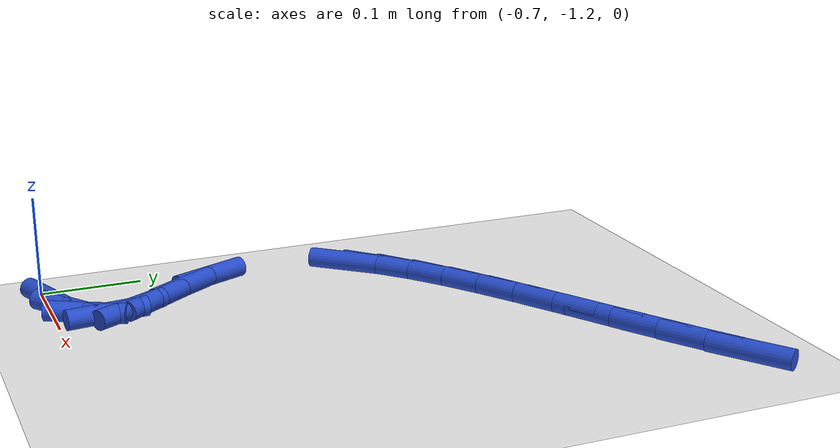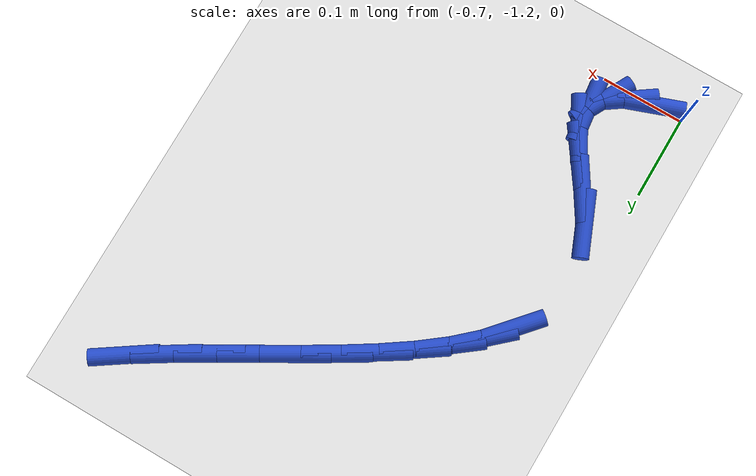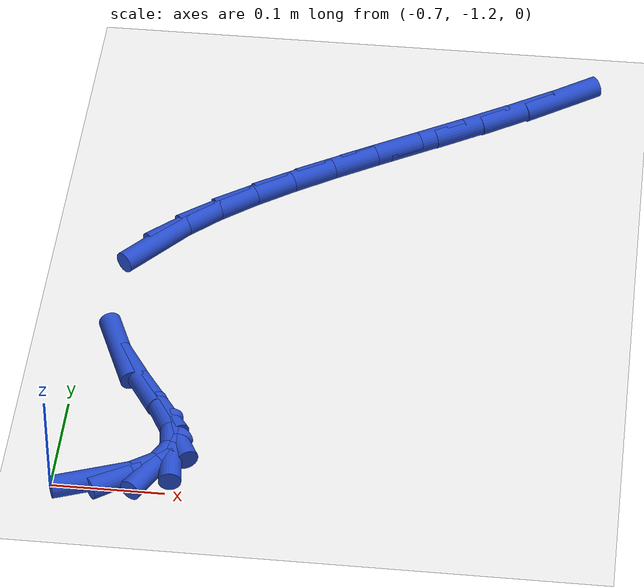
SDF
<sdf version="1.6">
 <world name="default">
  <model name="ground_plane">
   <static>1</static>
   <link name="link">
    <collision name="collision">
     <geometry><plane><normal>0 0 1</normal><size>100 100</size></plane></geometry>
     <surface><friction><ode><mu>100</mu><mu2>50</mu2></ode></friction></surface>
    </collision>
    <visual name="visual">
     <cast_shadows>0</cast_shadows>
     <geometry><plane><normal>0 0 1</normal><size>100 100</size></plane></geometry>
     <material>
      <script><uri>file://media/materials/scripts/gazebo.material</uri><name>Gazebo/WhiteGlow</name></script>
     </material>
    </visual>
   </link>
  </model>
  <model name="line">
   <link name="link_179">
    <pose>-0.6598824983831714 -1.1976900644804924 0.01 0 1.57 0.3508235294581301</pose>
    <collision name="collision">
     <geometry><cylinder><radius>0.01</radius><length>0.08</length></cylinder></geometry>
    </collision>
    <visual name="visual">
     <material>
      <script><name>Gazebo/Blue</name><uri>file://media/materials/scripts/gazebo.material</uri></script>
     </material>
     <geometry><cylinder><radius>0.01</radius><length>0.08</length></cylinder></geometry>
    </visual>
   </link>
   <link name="link_180">
    <pose>-0.6305008990826416 -1.1869375145508445 0.01 0 1.57 0.6054956786613084</pose>
    <collision name="collision">
     <geometry><cylinder><radius>0.01</radius><length>0.08</length></cylinder></geometry>
    </collision>
    <visual name="visual">
     <material>
      <script><name>Gazebo/Blue</name><uri>file://media/materials/scripts/gazebo.material</uri></script>
     </material>
     <geometry><cylinder><radius>0.01</radius><length>0.08</length></cylinder></geometry>
    </visual>
   </link>
   <link name="link_181">
    <pose>-0.610210162742367 -1.1728915519763219 0.01 0 1.57 1.0847719426976241</pose>
    <collision name="collision">
     <geometry><cylinder><radius>0.01</radius><length>0.08</length></cylinder></geometry>
    </collision>
    <visual name="visual">
     <material>
      <script><name>Gazebo/Blue</name><uri>file://media/materials/scripts/gazebo.material</uri></script>
     </material>
     <geometry><cylinder><radius>0.01</radius><length>0.08</length></cylinder></geometry>
    </visual>
   </link>
   <link name="link_182">
    <pose>-0.6005984969816252 -1.15469770941832 0.01 0 1.57 -1.456807750710764</pose>
    <collision name="collision">
     <geometry><cylinder><radius>0.01</radius><length>0.08</length></cylinder></geometry>
    </collision>
    <visual name="visual">
     <material>
      <script><name>Gazebo/Blue</name><uri>file://media/materials/scripts/gazebo.material</uri></script>
     </material>
     <geometry><cylinder><radius>0.01</radius><length>0.08</length></cylinder></geometry>
    </visual>
   </link>
   <link name="link_183">
    <pose>-0.6032541094196948 -1.131501519538237 0.01 0 1.57 -1.0759746072960739</pose>
    <collision name="collision">
     <geometry><cylinder><radius>0.01</radius><length>0.08</length></cylinder></geometry>
    </collision>
    <visual name="visual">
     <material>
      <script><name>Gazebo/Blue</name><uri>file://media/materials/scripts/gazebo.material</uri></script>
     </material>
     <geometry><cylinder><radius>0.01</radius><length>0.08</length></cylinder></geometry>
    </visual>
   </link>
   <link name="link_184">
    <pose>-0.6187268936114837 -1.1028268516559616 0.01 0 1.57 -0.9632029012774259</pose>
    <collision name="collision">
     <geometry><cylinder><radius>0.01</radius><length>0.08</length></cylinder></geometry>
    </collision>
    <visual name="visual">
     <material>
      <script><name>Gazebo/Blue</name><uri>file://media/materials/scripts/gazebo.material</uri></script>
     </material>
     <geometry><cylinder><radius>0.01</radius><length>0.08</length></cylinder></geometry>
    </visual>
   </link>
   <link name="link_185">
    <pose>-0.641190613293515 -1.0705208833584952 0.01 0 1.57 -1.002423085715838</pose>
    <collision name="collision">
     <geometry><cylinder><radius>0.01</radius><length>0.08</length></cylinder></geometry>
    </collision>
    <visual name="visual">
     <material>
      <script><name>Gazebo/Blue</name><uri>file://media/materials/scripts/gazebo.material</uri></script>
     </material>
     <geometry><cylinder><radius>0.01</radius><length>0.08</length></cylinder></geometry>
    </visual>
   </link>
   <link name="link_186">
    <pose>-0.6624002321439293 -1.0373121451618768 0.01 0 1.57 -1.1760225902428454</pose>
    <collision name="collision">
     <geometry><cylinder><radius>0.01</radius><length>0.08</length></cylinder></geometry>
    </collision>
    <visual name="visual">
     <material>
      <script><name>Gazebo/Blue</name><uri>file://media/materials/scripts/gazebo.material</uri></script>
     </material>
     <geometry><cylinder><radius>0.01</radius><length>0.08</length></cylinder></geometry>
    </visual>
   </link>
   <link name="link_191">
    <pose>-0.6501375088764044 -0.8920895694487568 0.01 0 1.57 0.8528889374319815</pose>
    <collision name="collision">
     <geometry><cylinder><radius>0.01</radius><length>0.08</length></cylinder></geometry>
    </collision>
    <visual name="visual">
     <material>
      <script><name>Gazebo/Blue</name><uri>file://media/materials/scripts/gazebo.material</uri></script>
     </material>
     <geometry><cylinder><radius>0.01</radius><length>0.08</length></cylinder></geometry>
    </visual>
   </link>
   <link name="link_192">
    <pose>-0.6277399724215161 -0.8664446804468154 0.01 0 1.57 0.7391953261253336</pose>
    <collision name="collision">
     <geometry><cylinder><radius>0.01</radius><length>0.08</length></cylinder></geometry>
    </collision>
    <visual name="visual">
     <material>
      <script><name>Gazebo/Blue</name><uri>file://media/materials/scripts/gazebo.material</uri></script>
     </material>
     <geometry><cylinder><radius>0.01</radius><length>0.08</length></cylinder></geometry>
    </visual>
   </link>
   <link name="link_193">
    <pose>-0.6004048758978415 -0.8415255947981019 0.01 0 1.57 0.6578186528634967</pose>
    <collision name="collision">
     <geometry><cylinder><radius>0.01</radius><length>0.08</length></cylinder></geometry>
    </collision>
    <visual name="visual">
     <material>
      <script><name>Gazebo/Blue</name><uri>file://media/materials/scripts/gazebo.material</uri></script>
     </material>
     <geometry><cylinder><radius>0.01</radius><length>0.08</length></cylinder></geometry>
    </visual>
   </link>
   <link name="link_194">
    <pose>-0.5688654066760983 -0.8171577102053318 0.01 0 1.57 0.600762453007134</pose>
    <collision name="collision">
     <geometry><cylinder><radius>0.01</radius><length>0.08</length></cylinder></geometry>
    </collision>
    <visual name="visual">
     <material>
      <script><name>Gazebo/Blue</name><uri>file://media/materials/scripts/gazebo.material</uri></script>
     </material>
     <geometry><cylinder><radius>0.01</radius><length>0.08</length></cylinder></geometry>
    </visual>
   </link>
   <link name="link_195">
    <pose>-0.5338547521270034 -0.7931664243712186 0.01 0 1.57 0.5623315843859638</pose>
    <collision name="collision">
     <geometry><cylinder><radius>0.01</radius><length>0.08</length></cylinder></geometry>
    </collision>
    <visual name="visual">
     <material>
      <script><name>Gazebo/Blue</name><uri>file://media/materials/scripts/gazebo.material</uri></script>
     </material>
     <geometry><cylinder><radius>0.01</radius><length>0.08</length></cylinder></geometry>
    </visual>
   </link>
   <link name="link_196">
    <pose>-0.4961060996212762 -0.7693771349984782 0.01 0 1.57 0.538749780582944</pose>
    <collision name="collision">
     <geometry><cylinder><radius>0.01</radius><length>0.08</length></cylinder></geometry>
    </collision>
    <visual name="visual">
     <material>
      <script><name>Gazebo/Blue</name><uri>file://media/materials/scripts/gazebo.material</uri></script>
     </material>
     <geometry><cylinder><radius>0.01</radius><length>0.08</length></cylinder></geometry>
    </visual>
   </link>
   <link name="link_197">
    <pose>-0.4563526365296338 -0.7456152397898247 0.01 0 1.57 0.527670661461065</pose>
    <collision name="collision">
     <geometry><cylinder><radius>0.01</radius><length>0.08</length></cylinder></geometry>
    </collision>
    <visual name="visual">
     <material>
      <script><name>Gazebo/Blue</name><uri>file://media/materials/scripts/gazebo.material</uri></script>
     </material>
     <geometry><cylinder><radius>0.01</radius><length>0.08</length></cylinder></geometry>
    </visual>
   </link>
   <link name="link_198">
    <pose>-0.4153275502227939 -0.7217061364479727 0.01 0 1.57 0.5278145810830134</pose>
    <collision name="collision">
     <geometry><cylinder><radius>0.01</radius><length>0.08</length></cylinder></geometry>
    </collision>
    <visual name="visual">
     <material>
      <script><name>Gazebo/Blue</name><uri>file://media/materials/scripts/gazebo.material</uri></script>
     </material>
     <geometry><cylinder><radius>0.01</radius><length>0.08</length></cylinder></geometry>
    </visual>
   </link>
   <link name="link_199">
    <pose>-0.3737640280714733 -0.6974752226756366 0.01 0 1.57 0.538748198621828</pose>
    <collision name="collision">
     <geometry><cylinder><radius>0.01</radius><length>0.08</length></cylinder></geometry>
    </collision>
    <visual name="visual">
     <material>
      <script><name>Gazebo/Blue</name><uri>file://media/materials/scripts/gazebo.material</uri></script>
     </material>
     <geometry><cylinder><radius>0.01</radius><length>0.08</length></cylinder></geometry>
    </visual>
   </link>
   <link name="link_200">
    <pose>-0.33239525744639165 -0.6727478961755318 0.01 0 1.57 0.5607802963796096</pose>
    <collision name="collision">
     <geometry><cylinder><radius>0.01</radius><length>0.08</length></cylinder></geometry>
    </collision>
    <visual name="visual">
     <material>
      <script><name>Gazebo/Blue</name><uri>file://media/materials/scripts/gazebo.material</uri></script>
     </material>
     <geometry><cylinder><radius>0.01</radius><length>0.08</length></cylinder></geometry>
    </visual>
   </link>
   <link name="link_201">
    <pose>-0.29195442571826585 -0.6473495546503726 0.01 0 1.57 0.594947266049384</pose>
    <collision name="collision">
     <geometry><cylinder><radius>0.01</radius><length>0.08</length></cylinder></geometry>
    </collision>
    <visual name="visual">
     <material>
      <script><name>Gazebo/Blue</name><uri>file://media/materials/scripts/gazebo.material</uri></script>
     </material>
     <geometry><cylinder><radius>0.01</radius><length>0.08</length></cylinder></geometry>
    </visual>
   </link>
  </model>
 </world>
</sdf>
